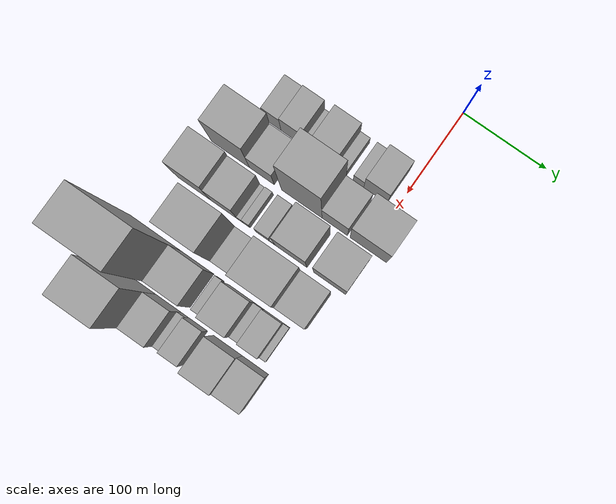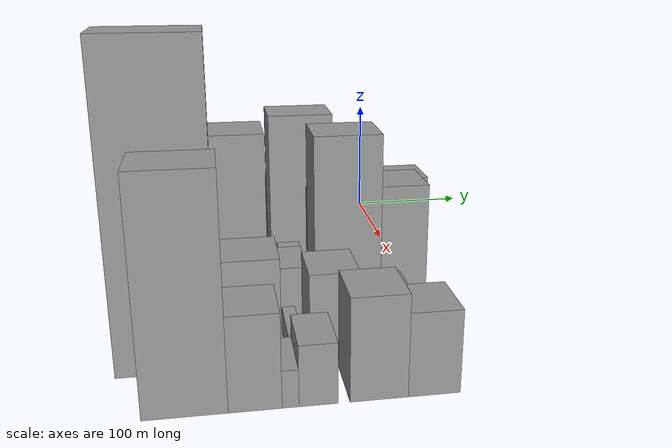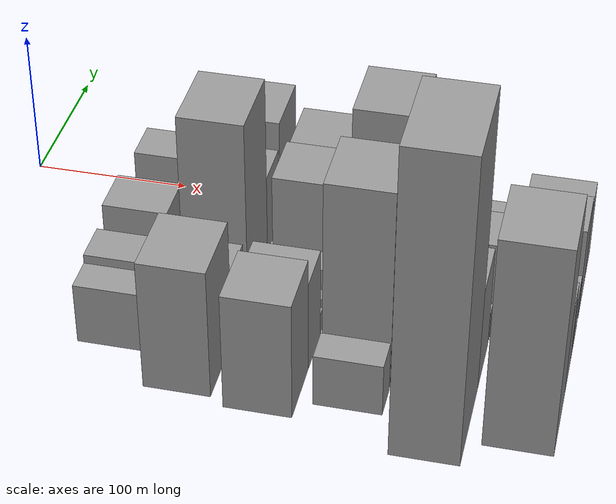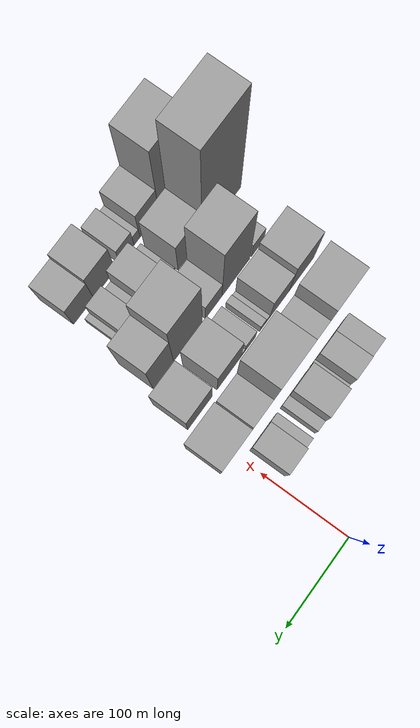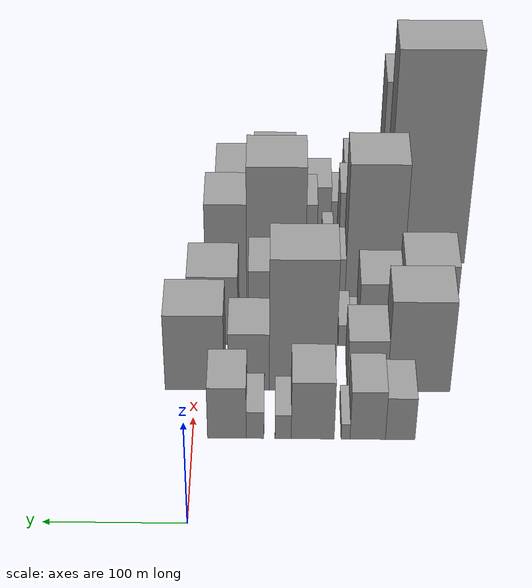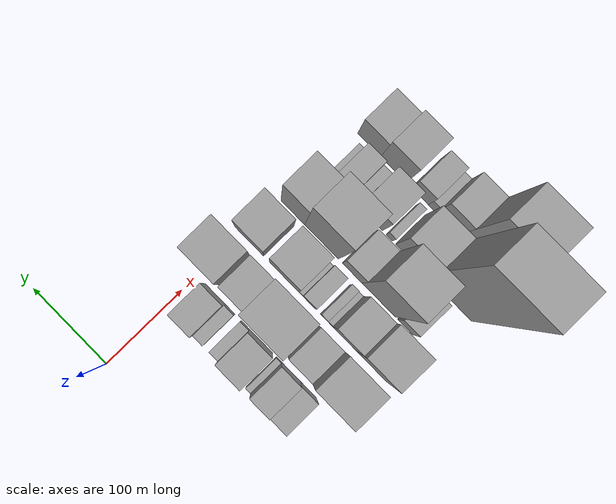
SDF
<sdf version="1.6">
 <world name="default">
  <model name="building_18">
   <static>1</static>
   <pose>100.0000 -150.6923 0 0.000000 0.000000 0.000000</pose>
   <link name="link">
    <pose>0 0 21.00 0 0 0</pose>
    <collision name="collision"><geometry><box><size>40.0000 21.4334 42.0000</size></box></geometry></collision>
    <visual name="visual">
     <cast_shadows>0</cast_shadows>
     <geometry><box><size>40.0000 21.4334 42.0000</size></box></geometry>
     <material>
      <script>
       <uri>model://grey_wall/materials/scripts</uri>
       <uri>model://grey_wall/materials/textures</uri>
       <name>vrc/grey_wall</name>
      </script>
     </material>
    </visual>
   </link>
  </model>
  <model name="building_19">
   <static>1</static>
   <pose>100.0000 -127.1408 0 0.000000 0.000000 0.000000</pose>
   <link name="link">
    <pose>0 0 24.00 0 0 0</pose>
    <collision name="collision"><geometry><box><size>40.0000 25.6695 48.0000</size></box></geometry></collision>
    <visual name="visual">
     <cast_shadows>0</cast_shadows>
     <geometry><box><size>40.0000 25.6695 48.0000</size></box></geometry>
     <material>
      <script>
       <uri>model://grey_wall/materials/scripts</uri>
       <uri>model://grey_wall/materials/textures</uri>
       <name>vrc/grey_wall</name>
      </script>
     </material>
    </visual>
   </link>
  </model>
  <model name="building_20">
   <static>1</static>
   <pose>100.0000 -111.0796 0 0.000000 0.000000 0.000000</pose>
   <link name="link">
    <pose>0 0 7.50 0 0 0</pose>
    <collision name="collision"><geometry><box><size>40.0000 6.4531 15.0000</size></box></geometry></collision>
    <visual name="visual">
     <cast_shadows>0</cast_shadows>
     <geometry><box><size>40.0000 6.4531 15.0000</size></box></geometry>
     <material>
      <script>
       <uri>model://grey_wall/materials/scripts</uri>
       <uri>model://grey_wall/materials/textures</uri>
       <name>vrc/grey_wall</name>
      </script>
     </material>
    </visual>
   </link>
  </model>
  <model name="building_21">
   <static>1</static>
   <pose>100.0000 -87.2297 0 0.000000 0.000000 0.000000</pose>
   <link name="link">
    <pose>0 0 28.50 0 0 0</pose>
    <collision name="collision"><geometry><box><size>40.0000 31.2466 57.0000</size></box></geometry></collision>
    <visual name="visual">
     <cast_shadows>0</cast_shadows>
     <geometry><box><size>40.0000 31.2466 57.0000</size></box></geometry>
     <material>
      <script>
       <uri>model://grey_wall/materials/scripts</uri>
       <uri>model://grey_wall/materials/textures</uri>
       <name>vrc/grey_wall</name>
      </script>
     </material>
    </visual>
   </link>
  </model>
  <model name="building_22">
   <static>1</static>
   <pose>100.0000 -65.7462 0 0.000000 0.000000 0.000000</pose>
   <link name="link">
    <pose>0 0 12.00 0 0 0</pose>
    <collision name="collision"><geometry><box><size>40.0000 11.7204 24.0000</size></box></geometry></collision>
    <visual name="visual">
     <cast_shadows>0</cast_shadows>
     <geometry><box><size>40.0000 11.7204 24.0000</size></box></geometry>
     <material>
      <script>
       <uri>model://grey_wall/materials/scripts</uri>
       <uri>model://grey_wall/materials/textures</uri>
       <name>vrc/grey_wall</name>
      </script>
     </material>
    </visual>
   </link>
  </model>
  <model name="building_23">
   <static>1</static>
   <pose>100.0000 -45.4646 0 0.000000 0.000000 0.000000</pose>
   <link name="link">
    <pose>0 0 13.50 0 0 0</pose>
    <collision name="collision"><geometry><box><size>40.0000 12.8429 27.0000</size></box></geometry></collision>
    <visual name="visual">
     <cast_shadows>0</cast_shadows>
     <geometry><box><size>40.0000 12.8429 27.0000</size></box></geometry>
     <material>
      <script>
       <uri>model://grey_wall/materials/scripts</uri>
       <uri>model://grey_wall/materials/textures</uri>
       <name>vrc/grey_wall</name>
      </script>
     </material>
    </visual>
   </link>
  </model>
  <model name="building_24">
   <static>1</static>
   <pose>100.0000 -24.9906 0 0.000000 0.000000 0.000000</pose>
   <link name="link">
    <pose>0 0 25.50 0 0 0</pose>
    <collision name="collision"><geometry><box><size>40.0000 28.1051 51.0000</size></box></geometry></collision>
    <visual name="visual">
     <cast_shadows>0</cast_shadows>
     <geometry><box><size>40.0000 28.1051 51.0000</size></box></geometry>
     <material>
      <script>
       <uri>model://grey_wall/materials/scripts</uri>
       <uri>model://grey_wall/materials/textures</uri>
       <name>vrc/grey_wall</name>
      </script>
     </material>
    </visual>
   </link>
  </model>
  <model name="building_76">
   <static>1</static>
   <pose>149.0000 -167.0259 0 0.000000 0.000000 0.000000</pose>
   <link name="link">
    <pose>0 0 45.00 0 0 0</pose>
    <collision name="collision"><geometry><box><size>40.0000 46.8847 90.0000</size></box></geometry></collision>
    <visual name="visual">
     <cast_shadows>0</cast_shadows>
     <geometry><box><size>40.0000 46.8847 90.0000</size></box></geometry>
     <material>
      <script>
       <uri>model://grey_wall/materials/scripts</uri>
       <uri>model://grey_wall/materials/textures</uri>
       <name>vrc/grey_wall</name>
      </script>
     </material>
    </visual>
   </link>
  </model>
  <model name="building_77">
   <static>1</static>
   <pose>149.0000 -128.6249 0 0.000000 0.000000 0.000000</pose>
   <link name="link">
    <pose>0 0 25.50 0 0 0</pose>
    <collision name="collision"><geometry><box><size>40.0000 29.9173 51.0000</size></box></geometry></collision>
    <visual name="visual">
     <cast_shadows>0</cast_shadows>
     <geometry><box><size>40.0000 29.9173 51.0000</size></box></geometry>
     <material>
      <script>
       <uri>model://grey_wall/materials/scripts</uri>
       <uri>model://grey_wall/materials/textures</uri>
       <name>vrc/grey_wall</name>
      </script>
     </material>
    </visual>
   </link>
  </model>
  <model name="building_78">
   <static>1</static>
   <pose>149.0000 -80.0184 0 0.000000 0.000000 0.000000</pose>
   <link name="link">
    <pose>0 0 64.50 0 0 0</pose>
    <collision name="collision"><geometry><box><size>40.0000 49.2957 129.0000</size></box></geometry></collision>
    <visual name="visual">
     <cast_shadows>0</cast_shadows>
     <geometry><box><size>40.0000 49.2957 129.0000</size></box></geometry>
     <material>
      <script>
       <uri>model://grey_wall/materials/scripts</uri>
       <uri>model://grey_wall/materials/textures</uri>
       <name>vrc/grey_wall</name>
      </script>
     </material>
    </visual>
   </link>
  </model>
  <model name="building_79">
   <static>1</static>
   <pose>149.0000 -40.0580 0 0.000000 0.000000 0.000000</pose>
   <link name="link">
    <pose>0 0 28.50 0 0 0</pose>
    <collision name="collision"><geometry><box><size>40.0000 30.6251 57.0000</size></box></geometry></collision>
    <visual name="visual">
     <cast_shadows>0</cast_shadows>
     <geometry><box><size>40.0000 30.6251 57.0000</size></box></geometry>
     <material>
      <script>
       <uri>model://grey_wall/materials/scripts</uri>
       <uri>model://grey_wall/materials/textures</uri>
       <name>vrc/grey_wall</name>
      </script>
     </material>
    </visual>
   </link>
  </model>
  <model name="building_80">
   <static>1</static>
   <pose>149.0000 0.3487 0 0.000000 0.000000 0.000000</pose>
   <link name="link">
    <pose>0 0 37.50 0 0 0</pose>
    <collision name="collision"><geometry><box><size>40.0000 44.1882 75.0000</size></box></geometry></collision>
    <visual name="visual">
     <cast_shadows>0</cast_shadows>
     <geometry><box><size>40.0000 44.1882 75.0000</size></box></geometry>
     <material>
      <script>
       <uri>model://grey_wall/materials/scripts</uri>
       <uri>model://grey_wall/materials/textures</uri>
       <name>vrc/grey_wall</name>
      </script>
     </material>
    </visual>
   </link>
  </model>
  <model name="building_126">
   <static>1</static>
   <pose>198.0000 -176.3773 0 0.000000 0.000000 0.000000</pose>
   <link name="link">
    <pose>0 0 40.50 0 0 0</pose>
    <collision name="collision"><geometry><box><size>40.0000 41.0515 81.0000</size></box></geometry></collision>
    <visual name="visual">
     <cast_shadows>0</cast_shadows>
     <geometry><box><size>40.0000 41.0515 81.0000</size></box></geometry>
     <material>
      <script>
       <uri>model://grey_wall/materials/scripts</uri>
       <uri>model://grey_wall/materials/textures</uri>
       <name>vrc/grey_wall</name>
      </script>
     </material>
    </visual>
   </link>
  </model>
  <model name="building_127">
   <static>1</static>
   <pose>198.0000 -139.7069 0 0.000000 0.000000 0.000000</pose>
   <link name="link">
    <pose>0 0 31.50 0 0 0</pose>
    <collision name="collision"><geometry><box><size>40.0000 32.2893 63.0000</size></box></geometry></collision>
    <visual name="visual">
     <cast_shadows>0</cast_shadows>
     <geometry><box><size>40.0000 32.2893 63.0000</size></box></geometry>
     <material>
      <script>
       <uri>model://grey_wall/materials/scripts</uri>
       <uri>model://grey_wall/materials/textures</uri>
       <name>vrc/grey_wall</name>
      </script>
     </material>
    </visual>
   </link>
  </model>
  <model name="building_128">
   <static>1</static>
   <pose>198.0000 -120.3595 0 0.000000 0.000000 0.000000</pose>
   <link name="link">
    <pose>0 0 7.50 0 0 0</pose>
    <collision name="collision"><geometry><box><size>40.0000 6.4056 15.0000</size></box></geometry></collision>
    <visual name="visual">
     <cast_shadows>0</cast_shadows>
     <geometry><box><size>40.0000 6.4056 15.0000</size></box></geometry>
     <material>
      <script>
       <uri>model://grey_wall/materials/scripts</uri>
       <uri>model://grey_wall/materials/textures</uri>
       <name>vrc/grey_wall</name>
      </script>
     </material>
    </visual>
   </link>
  </model>
  <model name="building_129">
   <static>1</static>
   <pose>198.0000 -112.6221 0 0.000000 0.000000 0.000000</pose>
   <link name="link">
    <pose>0 0 10.50 0 0 0</pose>
    <collision name="collision"><geometry><box><size>40.0000 9.0693 21.0000</size></box></geometry></collision>
    <visual name="visual">
     <cast_shadows>0</cast_shadows>
     <geometry><box><size>40.0000 9.0693 21.0000</size></box></geometry>
     <material>
      <script>
       <uri>model://grey_wall/materials/scripts</uri>
       <uri>model://grey_wall/materials/textures</uri>
       <name>vrc/grey_wall</name>
      </script>
     </material>
    </visual>
   </link>
  </model>
  <model name="building_130">
   <static>1</static>
   <pose>198.0000 -92.4894 0 0.000000 0.000000 0.000000</pose>
   <link name="link">
    <pose>0 0 15.00 0 0 0</pose>
    <collision name="collision"><geometry><box><size>40.0000 17.1961 30.0000</size></box></geometry></collision>
    <visual name="visual">
     <cast_shadows>0</cast_shadows>
     <geometry><box><size>40.0000 17.1961 30.0000</size></box></geometry>
     <material>
      <script>
       <uri>model://grey_wall/materials/scripts</uri>
       <uri>model://grey_wall/materials/textures</uri>
       <name>vrc/grey_wall</name>
      </script>
     </material>
    </visual>
   </link>
  </model>
  <model name="building_131">
   <static>1</static>
   <pose>198.0000 -80.7135 0 0.000000 0.000000 0.000000</pose>
   <link name="link">
    <pose>0 0 7.50 0 0 0</pose>
    <collision name="collision"><geometry><box><size>40.0000 6.3558 15.0000</size></box></geometry></collision>
    <visual name="visual">
     <cast_shadows>0</cast_shadows>
     <geometry><box><size>40.0000 6.3558 15.0000</size></box></geometry>
     <material>
      <script>
       <uri>model://grey_wall/materials/scripts</uri>
       <uri>model://grey_wall/materials/textures</uri>
       <name>vrc/grey_wall</name>
      </script>
     </material>
    </visual>
   </link>
  </model>
  <model name="building_132">
   <static>1</static>
   <pose>198.0000 -58.3212 0 0.000000 0.000000 0.000000</pose>
   <link name="link">
    <pose>0 0 37.50 0 0 0</pose>
    <collision name="collision"><geometry><box><size>40.0000 38.4289 75.0000</size></box></geometry></collision>
    <visual name="visual">
     <cast_shadows>0</cast_shadows>
     <geometry><box><size>40.0000 38.4289 75.0000</size></box></geometry>
     <material>
      <script>
       <uri>model://grey_wall/materials/scripts</uri>
       <uri>model://grey_wall/materials/textures</uri>
       <name>vrc/grey_wall</name>
      </script>
     </material>
    </visual>
   </link>
  </model>
  <model name="building_133">
   <static>1</static>
   <pose>198.0000 -11.8945 0 0.000000 0.000000 0.000000</pose>
   <link name="link">
    <pose>0 0 34.50 0 0 0</pose>
    <collision name="collision"><geometry><box><size>40.0000 38.4244 69.0000</size></box></geometry></collision>
    <visual name="visual">
     <cast_shadows>0</cast_shadows>
     <geometry><box><size>40.0000 38.4244 69.0000</size></box></geometry>
     <material>
      <script>
       <uri>model://grey_wall/materials/scripts</uri>
       <uri>model://grey_wall/materials/textures</uri>
       <name>vrc/grey_wall</name>
      </script>
     </material>
    </visual>
   </link>
  </model>
  <model name="building_177">
   <static>1</static>
   <pose>247.0000 -173.1141 0 0.000000 0.000000 0.000000</pose>
   <link name="link">
    <pose>0 0 18.00 0 0 0</pose>
    <collision name="collision"><geometry><box><size>40.0000 20.6027 36.0000</size></box></geometry></collision>
    <visual name="visual">
     <cast_shadows>0</cast_shadows>
     <geometry><box><size>40.0000 20.6027 36.0000</size></box></geometry>
     <material>
      <script>
       <uri>model://grey_wall/materials/scripts</uri>
       <uri>model://grey_wall/materials/textures</uri>
       <name>vrc/grey_wall</name>
      </script>
     </material>
    </visual>
   </link>
  </model>
  <model name="building_178">
   <static>1</static>
   <pose>247.0000 -137.2430 0 0.000000 0.000000 0.000000</pose>
   <link name="link">
    <pose>0 0 69.00 0 0 0</pose>
    <collision name="collision"><geometry><box><size>40.0000 45.1396 138.0000</size></box></geometry></collision>
    <visual name="visual">
     <cast_shadows>0</cast_shadows>
     <geometry><box><size>40.0000 45.1396 138.0000</size></box></geometry>
     <material>
      <script>
       <uri>model://grey_wall/materials/scripts</uri>
       <uri>model://grey_wall/materials/textures</uri>
       <name>vrc/grey_wall</name>
      </script>
     </material>
    </visual>
   </link>
  </model>
  <model name="building_179">
   <static>1</static>
   <pose>247.0000 -101.2885 0 0.000000 0.000000 0.000000</pose>
   <link name="link">
    <pose>0 0 22.50 0 0 0</pose>
    <collision name="collision"><geometry><box><size>40.0000 26.7692 45.0000</size></box></geometry></collision>
    <visual name="visual">
     <cast_shadows>0</cast_shadows>
     <geometry><box><size>40.0000 26.7692 45.0000</size></box></geometry>
     <material>
      <script>
       <uri>model://grey_wall/materials/scripts</uri>
       <uri>model://grey_wall/materials/textures</uri>
       <name>vrc/grey_wall</name>
      </script>
     </material>
    </visual>
   </link>
  </model>
  <model name="building_180">
   <static>1</static>
   <pose>247.0000 -59.9043 0 0.000000 0.000000 0.000000</pose>
   <link name="link">
    <pose>0 0 67.50 0 0 0</pose>
    <collision name="collision"><geometry><box><size>40.0000 45.9992 135.0000</size></box></geometry></collision>
    <visual name="visual">
     <cast_shadows>0</cast_shadows>
     <geometry><box><size>40.0000 45.9992 135.0000</size></box></geometry>
     <material>
      <script>
       <uri>model://grey_wall/materials/scripts</uri>
       <uri>model://grey_wall/materials/textures</uri>
       <name>vrc/grey_wall</name>
      </script>
     </material>
    </visual>
   </link>
  </model>
  <model name="building_181">
   <static>1</static>
   <pose>247.0000 -20.7625 0 0.000000 0.000000 0.000000</pose>
   <link name="link">
    <pose>0 0 49.50 0 0 0</pose>
    <collision name="collision"><geometry><box><size>40.0000 32.2844 99.0000</size></box></geometry></collision>
    <visual name="visual">
     <cast_shadows>0</cast_shadows>
     <geometry><box><size>40.0000 32.2844 99.0000</size></box></geometry>
     <material>
      <script>
       <uri>model://grey_wall/materials/scripts</uri>
       <uri>model://grey_wall/materials/textures</uri>
       <name>vrc/grey_wall</name>
      </script>
     </material>
    </visual>
   </link>
  </model>
  <model name="building_221">
   <static>1</static>
   <pose>296.0000 -181.6082 0 0.000000 0.000000 0.000000</pose>
   <link name="link">
    <pose>0 0 103.50 0 0 0</pose>
    <collision name="collision"><geometry><box><size>40.0000 63.5683 207.0000</size></box></geometry></collision>
    <visual name="visual">
     <cast_shadows>0</cast_shadows>
     <geometry><box><size>40.0000 63.5683 207.0000</size></box></geometry>
     <material>
      <script>
       <uri>model://grey_wall/materials/scripts</uri>
       <uri>model://grey_wall/materials/textures</uri>
       <name>vrc/grey_wall</name>
      </script>
     </material>
    </visual>
   </link>
  </model>
  <model name="building_222">
   <static>1</static>
   <pose>296.0000 -130.2844 0 0.000000 0.000000 0.000000</pose>
   <link name="link">
    <pose>0 0 36.00 0 0 0</pose>
    <collision name="collision"><geometry><box><size>40.0000 39.0794 72.0000</size></box></geometry></collision>
    <visual name="visual">
     <cast_shadows>0</cast_shadows>
     <geometry><box><size>40.0000 39.0794 72.0000</size></box></geometry>
     <material>
      <script>
       <uri>model://grey_wall/materials/scripts</uri>
       <uri>model://grey_wall/materials/textures</uri>
       <name>vrc/grey_wall</name>
      </script>
     </material>
    </visual>
   </link>
  </model>
  <model name="building_223">
   <static>1</static>
   <pose>296.0000 -102.3655 0 0.000000 0.000000 0.000000</pose>
   <link name="link">
    <pose>0 0 10.50 0 0 0</pose>
    <collision name="collision"><geometry><box><size>40.0000 8.7583 21.0000</size></box></geometry></collision>
    <visual name="visual">
     <cast_shadows>0</cast_shadows>
     <geometry><box><size>40.0000 8.7583 21.0000</size></box></geometry>
     <material>
      <script>
       <uri>model://grey_wall/materials/scripts</uri>
       <uri>model://grey_wall/materials/textures</uri>
       <name>vrc/grey_wall</name>
      </script>
     </material>
    </visual>
   </link>
  </model>
  <model name="building_224">
   <static>1</static>
   <pose>296.0000 -76.8739 0 0.000000 0.000000 0.000000</pose>
   <link name="link">
    <pose>0 0 30.00 0 0 0</pose>
    <collision name="collision"><geometry><box><size>40.0000 32.2249 60.0000</size></box></geometry></collision>
    <visual name="visual">
     <cast_shadows>0</cast_shadows>
     <geometry><box><size>40.0000 32.2249 60.0000</size></box></geometry>
     <material>
      <script>
       <uri>model://grey_wall/materials/scripts</uri>
       <uri>model://grey_wall/materials/textures</uri>
       <name>vrc/grey_wall</name>
      </script>
     </material>
    </visual>
   </link>
  </model>
  <model name="building_225">
   <static>1</static>
   <pose>296.0000 -55.2425 0 0.000000 0.000000 0.000000</pose>
   <link name="link">
    <pose>0 0 12.00 0 0 0</pose>
    <collision name="collision"><geometry><box><size>40.0000 11.0379 24.0000</size></box></geometry></collision>
    <visual name="visual">
     <cast_shadows>0</cast_shadows>
     <geometry><box><size>40.0000 11.0379 24.0000</size></box></geometry>
     <material>
      <script>
       <uri>model://grey_wall/materials/scripts</uri>
       <uri>model://grey_wall/materials/textures</uri>
       <name>vrc/grey_wall</name>
      </script>
     </material>
    </visual>
   </link>
  </model>
  <model name="building_226">
   <static>1</static>
   <pose>296.0000 -37.8678 0 0.000000 0.000000 0.000000</pose>
   <link name="link">
    <pose>0 0 21.00 0 0 0</pose>
    <collision name="collision"><geometry><box><size>40.0000 23.7115 42.0000</size></box></geometry></collision>
    <visual name="visual">
     <cast_shadows>0</cast_shadows>
     <geometry><box><size>40.0000 23.7115 42.0000</size></box></geometry>
     <material>
      <script>
       <uri>model://grey_wall/materials/scripts</uri>
       <uri>model://grey_wall/materials/textures</uri>
       <name>vrc/grey_wall</name>
      </script>
     </material>
    </visual>
   </link>
  </model>
  <model name="building_227">
   <static>1</static>
   <pose>296.0000 -22.3889 0 0.000000 0.000000 0.000000</pose>
   <link name="link">
    <pose>0 0 7.50 0 0 0</pose>
    <collision name="collision"><geometry><box><size>40.0000 7.2464 15.0000</size></box></geometry></collision>
    <visual name="visual">
     <cast_shadows>0</cast_shadows>
     <geometry><box><size>40.0000 7.2464 15.0000</size></box></geometry>
     <material>
      <script>
       <uri>model://grey_wall/materials/scripts</uri>
       <uri>model://grey_wall/materials/textures</uri>
       <name>vrc/grey_wall</name>
      </script>
     </material>
    </visual>
   </link>
  </model>
  <model name="building_268">
   <static>1</static>
   <pose>345.0000 -170.3886 0 0.000000 0.000000 0.000000</pose>
   <link name="link">
    <pose>0 0 72.00 0 0 0</pose>
    <collision name="collision"><geometry><box><size>40.0000 48.3325 144.0000</size></box></geometry></collision>
    <visual name="visual">
     <cast_shadows>0</cast_shadows>
     <geometry><box><size>40.0000 48.3325 144.0000</size></box></geometry>
     <material>
      <script>
       <uri>model://grey_wall/materials/scripts</uri>
       <uri>model://grey_wall/materials/textures</uri>
       <name>vrc/grey_wall</name>
      </script>
     </material>
    </visual>
   </link>
  </model>
  <model name="building_269">
   <static>1</static>
   <pose>345.0000 -130.8872 0 0.000000 0.000000 0.000000</pose>
   <link name="link">
    <pose>0 0 30.00 0 0 0</pose>
    <collision name="collision"><geometry><box><size>40.0000 30.6703 60.0000</size></box></geometry></collision>
    <visual name="visual">
     <cast_shadows>0</cast_shadows>
     <geometry><box><size>40.0000 30.6703 60.0000</size></box></geometry>
     <material>
      <script>
       <uri>model://grey_wall/materials/scripts</uri>
       <uri>model://grey_wall/materials/textures</uri>
       <name>vrc/grey_wall</name>
      </script>
     </material>
    </visual>
   </link>
  </model>
  <model name="building_270">
   <static>1</static>
   <pose>345.0000 -110.7030 0 0.000000 0.000000 0.000000</pose>
   <link name="link">
    <pose>0 0 12.00 0 0 0</pose>
    <collision name="collision"><geometry><box><size>40.0000 9.6982 24.0000</size></box></geometry></collision>
    <visual name="visual">
     <cast_shadows>0</cast_shadows>
     <geometry><box><size>40.0000 9.6982 24.0000</size></box></geometry>
     <material>
      <script>
       <uri>model://grey_wall/materials/scripts</uri>
       <uri>model://grey_wall/materials/textures</uri>
       <name>vrc/grey_wall</name>
      </script>
     </material>
    </visual>
   </link>
  </model>
  <model name="building_271">
   <static>1</static>
   <pose>345.0000 -94.4564 0 0.000000 0.000000 0.000000</pose>
   <link name="link">
    <pose>0 0 19.50 0 0 0</pose>
    <collision name="collision"><geometry><box><size>40.0000 22.7949 39.0000</size></box></geometry></collision>
    <visual name="visual">
     <cast_shadows>0</cast_shadows>
     <geometry><box><size>40.0000 22.7949 39.0000</size></box></geometry>
     <material>
      <script>
       <uri>model://grey_wall/materials/scripts</uri>
       <uri>model://grey_wall/materials/textures</uri>
       <name>vrc/grey_wall</name>
      </script>
     </material>
    </visual>
   </link>
  </model>
  <model name="building_272">
   <static>1</static>
   <pose>345.0000 -58.6847 0 0.000000 0.000000 0.000000</pose>
   <link name="link">
    <pose>0 0 33.00 0 0 0</pose>
    <collision name="collision"><geometry><box><size>40.0000 34.7487 66.0000</size></box></geometry></collision>
    <visual name="visual">
     <cast_shadows>0</cast_shadows>
     <geometry><box><size>40.0000 34.7487 66.0000</size></box></geometry>
     <material>
      <script>
       <uri>model://grey_wall/materials/scripts</uri>
       <uri>model://grey_wall/materials/textures</uri>
       <name>vrc/grey_wall</name>
      </script>
     </material>
    </visual>
   </link>
  </model>
  <model name="building_273">
   <static>1</static>
   <pose>345.0000 -25.5125 0 0.000000 0.000000 0.000000</pose>
   <link name="link">
    <pose>0 0 27.00 0 0 0</pose>
    <collision name="collision"><geometry><box><size>40.0000 31.5957 54.0000</size></box></geometry></collision>
    <visual name="visual">
     <cast_shadows>0</cast_shadows>
     <geometry><box><size>40.0000 31.5957 54.0000</size></box></geometry>
     <material>
      <script>
       <uri>model://grey_wall/materials/scripts</uri>
       <uri>model://grey_wall/materials/textures</uri>
       <name>vrc/grey_wall</name>
      </script>
     </material>
    </visual>
   </link>
  </model>
 </world>
</sdf>
